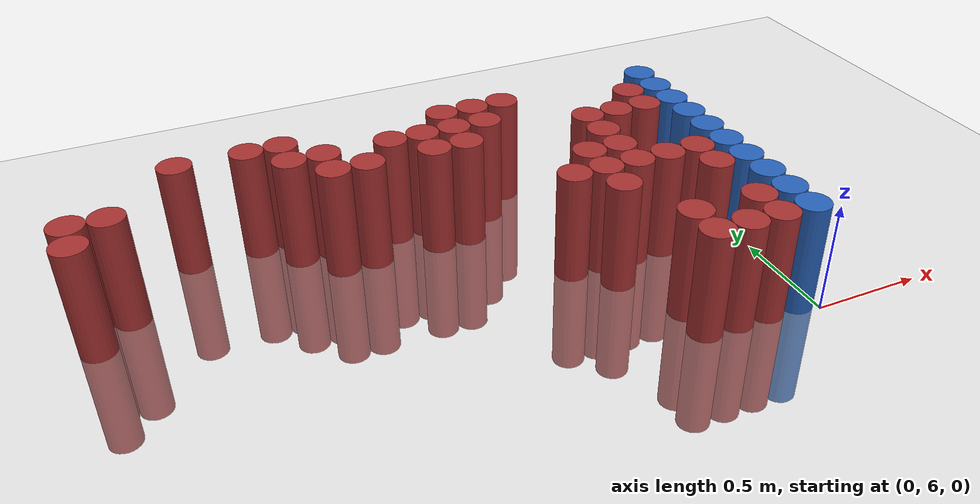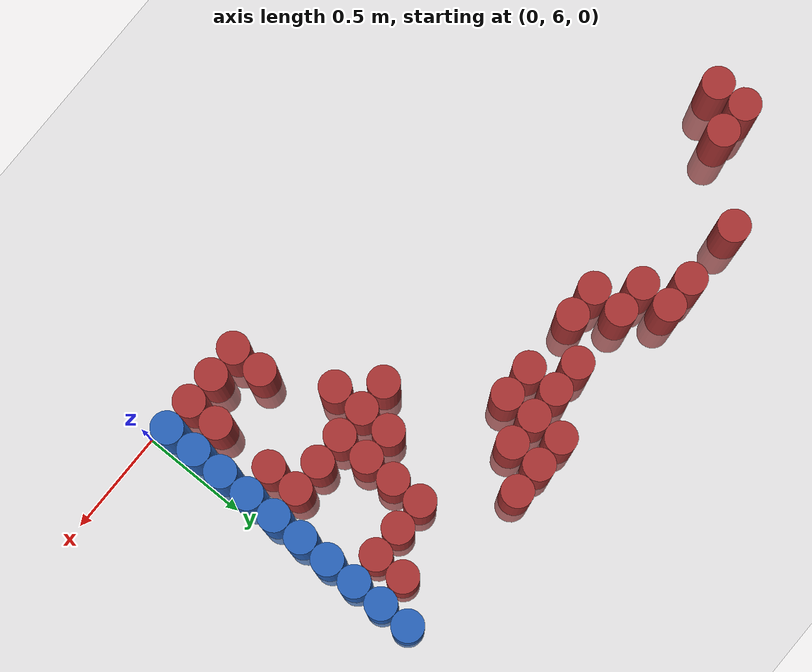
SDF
<sdf version="1.6">
 <world name="default">
  <model name="ground_plane">
   <static>1</static>
   <link name="link">
    <collision name="collision">
     <geometry><plane><normal>0 0 1</normal><size>100 100</size></plane></geometry>
     <surface><friction><ode><mu>100</mu><mu2>50</mu2></ode></friction></surface>
    </collision>
    <visual name="visual">
     <cast_shadows>0</cast_shadows>
     <geometry><plane><normal>0 0 1</normal><size>100 100</size></plane></geometry>
     <material>
      <script><uri>file://media/materials/scripts/gazebo.material</uri><name>Gazebo/Grey</name></script>
     </material>
    </visual>
   </link>
  </model>
  <model name="unit_cylinder_171">
   <static>1</static>
   <pose>-2.775000 6.975000 0.000000 0.000000 0.000000 0.000000</pose>
   <link name="link">
    <inertial>
     <mass>1</mass>
     <inertia><ixx>0.145833</ixx><ixy>0</ixy><ixz>0</ixz><iyy>0.145833</iyy><iyz>0</iyz><izz>0.125</izz></inertia>
    </inertial>
    <collision name="collision">
     <geometry><cylinder><radius>0.075000</radius><length>1</length></cylinder></geometry>
    </collision>
    <visual name="visual">
     <geometry><cylinder><radius>0.075000</radius><length>1</length></cylinder></geometry>
     <material>
      <ambient>0.648000 0.192000 0.192000 1</ambient>
      <diffuse>0.648000 0.192000 0.192000 1</diffuse>
     </material>
     <material>
      <script><name>Gazebo/Grey</name><uri>file://media/materials/scripts/gazebo.material</uri></script>
     </material>
    </visual>
   </link>
  </model>
  <model name="unit_cylinder_172">
   <static>1</static>
   <pose>-2.775000 7.125000 0.000000 0.000000 0.000000 0.000000</pose>
   <link name="link">
    <inertial>
     <mass>1</mass>
     <inertia><ixx>0.145833</ixx><ixy>0</ixy><ixz>0</ixz><iyy>0.145833</iyy><iyz>0</iyz><izz>0.125</izz></inertia>
    </inertial>
    <collision name="collision">
     <geometry><cylinder><radius>0.075000</radius><length>1</length></cylinder></geometry>
    </collision>
    <visual name="visual">
     <geometry><cylinder><radius>0.075000</radius><length>1</length></cylinder></geometry>
     <material>
      <ambient>0.648000 0.192000 0.192000 1</ambient>
      <diffuse>0.648000 0.192000 0.192000 1</diffuse>
     </material>
     <material>
      <script><name>Gazebo/Grey</name><uri>file://media/materials/scripts/gazebo.material</uri></script>
     </material>
    </visual>
   </link>
  </model>
  <model name="unit_cylinder_173">
   <static>1</static>
   <pose>-2.625000 7.125000 0.000000 0.000000 0.000000 0.000000</pose>
   <link name="link">
    <inertial>
     <mass>1</mass>
     <inertia><ixx>0.145833</ixx><ixy>0</ixy><ixz>0</ixz><iyy>0.145833</iyy><iyz>0</iyz><izz>0.125</izz></inertia>
    </inertial>
    <collision name="collision">
     <geometry><cylinder><radius>0.075000</radius><length>1</length></cylinder></geometry>
    </collision>
    <visual name="visual">
     <geometry><cylinder><radius>0.075000</radius><length>1</length></cylinder></geometry>
     <material>
      <ambient>0.648000 0.192000 0.192000 1</ambient>
      <diffuse>0.648000 0.192000 0.192000 1</diffuse>
     </material>
     <material>
      <script><name>Gazebo/Grey</name><uri>file://media/materials/scripts/gazebo.material</uri></script>
     </material>
    </visual>
   </link>
  </model>
  <model name="unit_cylinder_174">
   <static>1</static>
   <pose>-2.325000 7.425000 0.000000 0.000000 0.000000 0.000000</pose>
   <link name="link">
    <inertial>
     <mass>1</mass>
     <inertia><ixx>0.145833</ixx><ixy>0</ixy><ixz>0</ixz><iyy>0.145833</iyy><iyz>0</iyz><izz>0.125</izz></inertia>
    </inertial>
    <collision name="collision">
     <geometry><cylinder><radius>0.075000</radius><length>1</length></cylinder></geometry>
    </collision>
    <visual name="visual">
     <geometry><cylinder><radius>0.075000</radius><length>1</length></cylinder></geometry>
     <material>
      <ambient>0.648000 0.192000 0.192000 1</ambient>
      <diffuse>0.648000 0.192000 0.192000 1</diffuse>
     </material>
     <material>
      <script><name>Gazebo/Grey</name><uri>file://media/materials/scripts/gazebo.material</uri></script>
     </material>
    </visual>
   </link>
  </model>
  <model name="unit_cylinder_183">
   <static>1</static>
   <pose>-2.025000 7.425000 0.000000 0.000000 0.000000 0.000000</pose>
   <link name="link">
    <inertial>
     <mass>1</mass>
     <inertia><ixx>0.145833</ixx><ixy>0</ixy><ixz>0</ixz><iyy>0.145833</iyy><iyz>0</iyz><izz>0.125</izz></inertia>
    </inertial>
    <collision name="collision">
     <geometry><cylinder><radius>0.075000</radius><length>1</length></cylinder></geometry>
    </collision>
    <visual name="visual">
     <geometry><cylinder><radius>0.075000</radius><length>1</length></cylinder></geometry>
     <material>
      <ambient>0.648000 0.192000 0.192000 1</ambient>
      <diffuse>0.648000 0.192000 0.192000 1</diffuse>
     </material>
     <material>
      <script><name>Gazebo/Grey</name><uri>file://media/materials/scripts/gazebo.material</uri></script>
     </material>
    </visual>
   </link>
  </model>
  <model name="unit_cylinder_191">
   <static>1</static>
   <pose>-1.875000 7.275000 0.000000 0.000000 0.000000 0.000000</pose>
   <link name="link">
    <inertial>
     <mass>1</mass>
     <inertia><ixx>0.145833</ixx><ixy>0</ixy><ixz>0</ixz><iyy>0.145833</iyy><iyz>0</iyz><izz>0.125</izz></inertia>
    </inertial>
    <collision name="collision">
     <geometry><cylinder><radius>0.075000</radius><length>1</length></cylinder></geometry>
    </collision>
    <visual name="visual">
     <geometry><cylinder><radius>0.075000</radius><length>1</length></cylinder></geometry>
     <material>
      <ambient>0.648000 0.192000 0.192000 1</ambient>
      <diffuse>0.648000 0.192000 0.192000 1</diffuse>
     </material>
     <material>
      <script><name>Gazebo/Grey</name><uri>file://media/materials/scripts/gazebo.material</uri></script>
     </material>
    </visual>
   </link>
  </model>
  <model name="unit_cylinder_192">
   <static>1</static>
   <pose>-1.875000 7.425000 0.000000 0.000000 0.000000 0.000000</pose>
   <link name="link">
    <inertial>
     <mass>1</mass>
     <inertia><ixx>0.145833</ixx><ixy>0</ixy><ixz>0</ixz><iyy>0.145833</iyy><iyz>0</iyz><izz>0.125</izz></inertia>
    </inertial>
    <collision name="collision">
     <geometry><cylinder><radius>0.075000</radius><length>1</length></cylinder></geometry>
    </collision>
    <visual name="visual">
     <geometry><cylinder><radius>0.075000</radius><length>1</length></cylinder></geometry>
     <material>
      <ambient>0.648000 0.192000 0.192000 1</ambient>
      <diffuse>0.648000 0.192000 0.192000 1</diffuse>
     </material>
     <material>
      <script><name>Gazebo/Grey</name><uri>file://media/materials/scripts/gazebo.material</uri></script>
     </material>
    </visual>
   </link>
  </model>
  <model name="unit_cylinder_201">
   <static>1</static>
   <pose>-1.725000 7.125000 0.000000 0.000000 0.000000 0.000000</pose>
   <link name="link">
    <inertial>
     <mass>1</mass>
     <inertia><ixx>0.145833</ixx><ixy>0</ixy><ixz>0</ixz><iyy>0.145833</iyy><iyz>0</iyz><izz>0.125</izz></inertia>
    </inertial>
    <collision name="collision">
     <geometry><cylinder><radius>0.075000</radius><length>1</length></cylinder></geometry>
    </collision>
    <visual name="visual">
     <geometry><cylinder><radius>0.075000</radius><length>1</length></cylinder></geometry>
     <material>
      <ambient>0.648000 0.192000 0.192000 1</ambient>
      <diffuse>0.648000 0.192000 0.192000 1</diffuse>
     </material>
     <material>
      <script><name>Gazebo/Grey</name><uri>file://media/materials/scripts/gazebo.material</uri></script>
     </material>
    </visual>
   </link>
  </model>
  <model name="unit_cylinder_202">
   <static>1</static>
   <pose>-1.725000 7.275000 0.000000 0.000000 0.000000 0.000000</pose>
   <link name="link">
    <inertial>
     <mass>1</mass>
     <inertia><ixx>0.145833</ixx><ixy>0</ixy><ixz>0</ixz><iyy>0.145833</iyy><iyz>0</iyz><izz>0.125</izz></inertia>
    </inertial>
    <collision name="collision">
     <geometry><cylinder><radius>0.075000</radius><length>1</length></cylinder></geometry>
    </collision>
    <visual name="visual">
     <geometry><cylinder><radius>0.075000</radius><length>1</length></cylinder></geometry>
     <material>
      <ambient>0.648000 0.192000 0.192000 1</ambient>
      <diffuse>0.648000 0.192000 0.192000 1</diffuse>
     </material>
     <material>
      <script><name>Gazebo/Grey</name><uri>file://media/materials/scripts/gazebo.material</uri></script>
     </material>
    </visual>
   </link>
  </model>
  <model name="unit_cylinder_211">
   <static>1</static>
   <pose>-1.575000 7.125000 0.000000 0.000000 0.000000 0.000000</pose>
   <link name="link">
    <inertial>
     <mass>1</mass>
     <inertia><ixx>0.145833</ixx><ixy>0</ixy><ixz>0</ixz><iyy>0.145833</iyy><iyz>0</iyz><izz>0.125</izz></inertia>
    </inertial>
    <collision name="collision">
     <geometry><cylinder><radius>0.075000</radius><length>1</length></cylinder></geometry>
    </collision>
    <visual name="visual">
     <geometry><cylinder><radius>0.075000</radius><length>1</length></cylinder></geometry>
     <material>
      <ambient>0.648000 0.192000 0.192000 1</ambient>
      <diffuse>0.648000 0.192000 0.192000 1</diffuse>
     </material>
     <material>
      <script><name>Gazebo/Grey</name><uri>file://media/materials/scripts/gazebo.material</uri></script>
     </material>
    </visual>
   </link>
  </model>
  <model name="unit_cylinder_216">
   <static>1</static>
   <pose>-1.425000 7.275000 0.000000 0.000000 0.000000 0.000000</pose>
   <link name="link">
    <inertial>
     <mass>1</mass>
     <inertia><ixx>0.145833</ixx><ixy>0</ixy><ixz>0</ixz><iyy>0.145833</iyy><iyz>0</iyz><izz>0.125</izz></inertia>
    </inertial>
    <collision name="collision">
     <geometry><cylinder><radius>0.075000</radius><length>1</length></cylinder></geometry>
    </collision>
    <visual name="visual">
     <geometry><cylinder><radius>0.075000</radius><length>1</length></cylinder></geometry>
     <material>
      <ambient>0.648000 0.192000 0.192000 1</ambient>
      <diffuse>0.648000 0.192000 0.192000 1</diffuse>
     </material>
     <material>
      <script><name>Gazebo/Grey</name><uri>file://media/materials/scripts/gazebo.material</uri></script>
     </material>
    </visual>
   </link>
  </model>
  <model name="unit_cylinder_217">
   <static>1</static>
   <pose>-1.275000 7.125000 0.000000 0.000000 0.000000 0.000000</pose>
   <link name="link">
    <inertial>
     <mass>1</mass>
     <inertia><ixx>0.145833</ixx><ixy>0</ixy><ixz>0</ixz><iyy>0.145833</iyy><iyz>0</iyz><izz>0.125</izz></inertia>
    </inertial>
    <collision name="collision">
     <geometry><cylinder><radius>0.075000</radius><length>1</length></cylinder></geometry>
    </collision>
    <visual name="visual">
     <geometry><cylinder><radius>0.075000</radius><length>1</length></cylinder></geometry>
     <material>
      <ambient>0.648000 0.192000 0.192000 1</ambient>
      <diffuse>0.648000 0.192000 0.192000 1</diffuse>
     </material>
     <material>
      <script><name>Gazebo/Grey</name><uri>file://media/materials/scripts/gazebo.material</uri></script>
     </material>
    </visual>
   </link>
  </model>
  <model name="unit_cylinder_218">
   <static>1</static>
   <pose>-1.275000 7.275000 0.000000 0.000000 0.000000 0.000000</pose>
   <link name="link">
    <inertial>
     <mass>1</mass>
     <inertia><ixx>0.145833</ixx><ixy>0</ixy><ixz>0</ixz><iyy>0.145833</iyy><iyz>0</iyz><izz>0.125</izz></inertia>
    </inertial>
    <collision name="collision">
     <geometry><cylinder><radius>0.075000</radius><length>1</length></cylinder></geometry>
    </collision>
    <visual name="visual">
     <geometry><cylinder><radius>0.075000</radius><length>1</length></cylinder></geometry>
     <material>
      <ambient>0.648000 0.192000 0.192000 1</ambient>
      <diffuse>0.648000 0.192000 0.192000 1</diffuse>
     </material>
     <material>
      <script><name>Gazebo/Grey</name><uri>file://media/materials/scripts/gazebo.material</uri></script>
     </material>
    </visual>
   </link>
  </model>
  <model name="unit_cylinder_220">
   <static>1</static>
   <pose>-1.125000 7.125000 0.000000 0.000000 0.000000 0.000000</pose>
   <link name="link">
    <inertial>
     <mass>1</mass>
     <inertia><ixx>0.145833</ixx><ixy>0</ixy><ixz>0</ixz><iyy>0.145833</iyy><iyz>0</iyz><izz>0.125</izz></inertia>
    </inertial>
    <collision name="collision">
     <geometry><cylinder><radius>0.075000</radius><length>1</length></cylinder></geometry>
    </collision>
    <visual name="visual">
     <geometry><cylinder><radius>0.075000</radius><length>1</length></cylinder></geometry>
     <material>
      <ambient>0.648000 0.192000 0.192000 1</ambient>
      <diffuse>0.648000 0.192000 0.192000 1</diffuse>
     </material>
     <material>
      <script><name>Gazebo/Grey</name><uri>file://media/materials/scripts/gazebo.material</uri></script>
     </material>
    </visual>
   </link>
  </model>
  <model name="unit_cylinder_221">
   <static>1</static>
   <pose>-1.125000 7.275000 0.000000 0.000000 0.000000 0.000000</pose>
   <link name="link">
    <inertial>
     <mass>1</mass>
     <inertia><ixx>0.145833</ixx><ixy>0</ixy><ixz>0</ixz><iyy>0.145833</iyy><iyz>0</iyz><izz>0.125</izz></inertia>
    </inertial>
    <collision name="collision">
     <geometry><cylinder><radius>0.075000</radius><length>1</length></cylinder></geometry>
    </collision>
    <visual name="visual">
     <geometry><cylinder><radius>0.075000</radius><length>1</length></cylinder></geometry>
     <material>
      <ambient>0.648000 0.192000 0.192000 1</ambient>
      <diffuse>0.648000 0.192000 0.192000 1</diffuse>
     </material>
     <material>
      <script><name>Gazebo/Grey</name><uri>file://media/materials/scripts/gazebo.material</uri></script>
     </material>
    </visual>
   </link>
  </model>
  <model name="unit_cylinder_222">
   <static>1</static>
   <pose>-1.125000 7.425000 0.000000 0.000000 0.000000 0.000000</pose>
   <link name="link">
    <inertial>
     <mass>1</mass>
     <inertia><ixx>0.145833</ixx><ixy>0</ixy><ixz>0</ixz><iyy>0.145833</iyy><iyz>0</iyz><izz>0.125</izz></inertia>
    </inertial>
    <collision name="collision">
     <geometry><cylinder><radius>0.075000</radius><length>1</length></cylinder></geometry>
    </collision>
    <visual name="visual">
     <geometry><cylinder><radius>0.075000</radius><length>1</length></cylinder></geometry>
     <material>
      <ambient>0.648000 0.192000 0.192000 1</ambient>
      <diffuse>0.648000 0.192000 0.192000 1</diffuse>
     </material>
     <material>
      <script><name>Gazebo/Grey</name><uri>file://media/materials/scripts/gazebo.material</uri></script>
     </material>
    </visual>
   </link>
  </model>
  <model name="unit_cylinder_225">
   <static>1</static>
   <pose>-0.975000 7.275000 0.000000 0.000000 0.000000 0.000000</pose>
   <link name="link">
    <inertial>
     <mass>1</mass>
     <inertia><ixx>0.145833</ixx><ixy>0</ixy><ixz>0</ixz><iyy>0.145833</iyy><iyz>0</iyz><izz>0.125</izz></inertia>
    </inertial>
    <collision name="collision">
     <geometry><cylinder><radius>0.075000</radius><length>1</length></cylinder></geometry>
    </collision>
    <visual name="visual">
     <geometry><cylinder><radius>0.075000</radius><length>1</length></cylinder></geometry>
     <material>
      <ambient>0.648000 0.192000 0.192000 1</ambient>
      <diffuse>0.648000 0.192000 0.192000 1</diffuse>
     </material>
     <material>
      <script><name>Gazebo/Grey</name><uri>file://media/materials/scripts/gazebo.material</uri></script>
     </material>
    </visual>
   </link>
  </model>
  <model name="unit_cylinder_226">
   <static>1</static>
   <pose>-0.975000 7.425000 0.000000 0.000000 0.000000 0.000000</pose>
   <link name="link">
    <inertial>
     <mass>1</mass>
     <inertia><ixx>0.145833</ixx><ixy>0</ixy><ixz>0</ixz><iyy>0.145833</iyy><iyz>0</iyz><izz>0.125</izz></inertia>
    </inertial>
    <collision name="collision">
     <geometry><cylinder><radius>0.075000</radius><length>1</length></cylinder></geometry>
    </collision>
    <visual name="visual">
     <geometry><cylinder><radius>0.075000</radius><length>1</length></cylinder></geometry>
     <material>
      <ambient>0.648000 0.192000 0.192000 1</ambient>
      <diffuse>0.648000 0.192000 0.192000 1</diffuse>
     </material>
     <material>
      <script><name>Gazebo/Grey</name><uri>file://media/materials/scripts/gazebo.material</uri></script>
     </material>
    </visual>
   </link>
  </model>
  <model name="unit_cylinder_228">
   <static>1</static>
   <pose>-0.825000 6.675000 0.000000 0.000000 0.000000 0.000000</pose>
   <link name="link">
    <inertial>
     <mass>1</mass>
     <inertia><ixx>0.145833</ixx><ixy>0</ixy><ixz>0</ixz><iyy>0.145833</iyy><iyz>0</iyz><izz>0.125</izz></inertia>
    </inertial>
    <collision name="collision">
     <geometry><cylinder><radius>0.075000</radius><length>1</length></cylinder></geometry>
    </collision>
    <visual name="visual">
     <geometry><cylinder><radius>0.075000</radius><length>1</length></cylinder></geometry>
     <material>
      <ambient>0.648000 0.192000 0.192000 1</ambient>
      <diffuse>0.648000 0.192000 0.192000 1</diffuse>
     </material>
     <material>
      <script><name>Gazebo/Grey</name><uri>file://media/materials/scripts/gazebo.material</uri></script>
     </material>
    </visual>
   </link>
  </model>
  <model name="unit_cylinder_229">
   <static>1</static>
   <pose>-0.825000 7.425000 0.000000 0.000000 0.000000 0.000000</pose>
   <link name="link">
    <inertial>
     <mass>1</mass>
     <inertia><ixx>0.145833</ixx><ixy>0</ixy><ixz>0</ixz><iyy>0.145833</iyy><iyz>0</iyz><izz>0.125</izz></inertia>
    </inertial>
    <collision name="collision">
     <geometry><cylinder><radius>0.075000</radius><length>1</length></cylinder></geometry>
    </collision>
    <visual name="visual">
     <geometry><cylinder><radius>0.075000</radius><length>1</length></cylinder></geometry>
     <material>
      <ambient>0.648000 0.192000 0.192000 1</ambient>
      <diffuse>0.648000 0.192000 0.192000 1</diffuse>
     </material>
     <material>
      <script><name>Gazebo/Grey</name><uri>file://media/materials/scripts/gazebo.material</uri></script>
     </material>
    </visual>
   </link>
  </model>
  <model name="unit_cylinder_230">
   <static>1</static>
   <pose>-0.675000 6.525000 0.000000 0.000000 0.000000 0.000000</pose>
   <link name="link">
    <inertial>
     <mass>1</mass>
     <inertia><ixx>0.145833</ixx><ixy>0</ixy><ixz>0</ixz><iyy>0.145833</iyy><iyz>0</iyz><izz>0.125</izz></inertia>
    </inertial>
    <collision name="collision">
     <geometry><cylinder><radius>0.075000</radius><length>1</length></cylinder></geometry>
    </collision>
    <visual name="visual">
     <geometry><cylinder><radius>0.075000</radius><length>1</length></cylinder></geometry>
     <material>
      <ambient>0.648000 0.192000 0.192000 1</ambient>
      <diffuse>0.648000 0.192000 0.192000 1</diffuse>
     </material>
     <material>
      <script><name>Gazebo/Grey</name><uri>file://media/materials/scripts/gazebo.material</uri></script>
     </material>
    </visual>
   </link>
  </model>
  <model name="unit_cylinder_231">
   <static>1</static>
   <pose>-0.675000 6.675000 0.000000 0.000000 0.000000 0.000000</pose>
   <link name="link">
    <inertial>
     <mass>1</mass>
     <inertia><ixx>0.145833</ixx><ixy>0</ixy><ixz>0</ixz><iyy>0.145833</iyy><iyz>0</iyz><izz>0.125</izz></inertia>
    </inertial>
    <collision name="collision">
     <geometry><cylinder><radius>0.075000</radius><length>1</length></cylinder></geometry>
    </collision>
    <visual name="visual">
     <geometry><cylinder><radius>0.075000</radius><length>1</length></cylinder></geometry>
     <material>
      <ambient>0.648000 0.192000 0.192000 1</ambient>
      <diffuse>0.648000 0.192000 0.192000 1</diffuse>
     </material>
     <material>
      <script><name>Gazebo/Grey</name><uri>file://media/materials/scripts/gazebo.material</uri></script>
     </material>
    </visual>
   </link>
  </model>
  <model name="unit_cylinder_232">
   <static>1</static>
   <pose>-0.675000 6.825000 0.000000 0.000000 0.000000 0.000000</pose>
   <link name="link">
    <inertial>
     <mass>1</mass>
     <inertia><ixx>0.145833</ixx><ixy>0</ixy><ixz>0</ixz><iyy>0.145833</iyy><iyz>0</iyz><izz>0.125</izz></inertia>
    </inertial>
    <collision name="collision">
     <geometry><cylinder><radius>0.075000</radius><length>1</length></cylinder></geometry>
    </collision>
    <visual name="visual">
     <geometry><cylinder><radius>0.075000</radius><length>1</length></cylinder></geometry>
     <material>
      <ambient>0.648000 0.192000 0.192000 1</ambient>
      <diffuse>0.648000 0.192000 0.192000 1</diffuse>
     </material>
     <material>
      <script><name>Gazebo/Grey</name><uri>file://media/materials/scripts/gazebo.material</uri></script>
     </material>
    </visual>
   </link>
  </model>
  <model name="unit_cylinder_234">
   <static>1</static>
   <pose>-0.525000 6.075000 0.000000 0.000000 0.000000 0.000000</pose>
   <link name="link">
    <inertial>
     <mass>1</mass>
     <inertia><ixx>0.145833</ixx><ixy>0</ixy><ixz>0</ixz><iyy>0.145833</iyy><iyz>0</iyz><izz>0.125</izz></inertia>
    </inertial>
    <collision name="collision">
     <geometry><cylinder><radius>0.075000</radius><length>1</length></cylinder></geometry>
    </collision>
    <visual name="visual">
     <geometry><cylinder><radius>0.075000</radius><length>1</length></cylinder></geometry>
     <material>
      <ambient>0.648000 0.192000 0.192000 1</ambient>
      <diffuse>0.648000 0.192000 0.192000 1</diffuse>
     </material>
     <material>
      <script><name>Gazebo/Grey</name><uri>file://media/materials/scripts/gazebo.material</uri></script>
     </material>
    </visual>
   </link>
  </model>
  <model name="unit_cylinder_235">
   <static>1</static>
   <pose>-0.525000 6.225000 0.000000 0.000000 0.000000 0.000000</pose>
   <link name="link">
    <inertial>
     <mass>1</mass>
     <inertia><ixx>0.145833</ixx><ixy>0</ixy><ixz>0</ixz><iyy>0.145833</iyy><iyz>0</iyz><izz>0.125</izz></inertia>
    </inertial>
    <collision name="collision">
     <geometry><cylinder><radius>0.075000</radius><length>1</length></cylinder></geometry>
    </collision>
    <visual name="visual">
     <geometry><cylinder><radius>0.075000</radius><length>1</length></cylinder></geometry>
     <material>
      <ambient>0.648000 0.192000 0.192000 1</ambient>
      <diffuse>0.648000 0.192000 0.192000 1</diffuse>
     </material>
     <material>
      <script><name>Gazebo/Grey</name><uri>file://media/materials/scripts/gazebo.material</uri></script>
     </material>
    </visual>
   </link>
  </model>
  <model name="unit_cylinder_236">
   <static>1</static>
   <pose>-0.525000 6.675000 0.000000 0.000000 0.000000 0.000000</pose>
   <link name="link">
    <inertial>
     <mass>1</mass>
     <inertia><ixx>0.145833</ixx><ixy>0</ixy><ixz>0</ixz><iyy>0.145833</iyy><iyz>0</iyz><izz>0.125</izz></inertia>
    </inertial>
    <collision name="collision">
     <geometry><cylinder><radius>0.075000</radius><length>1</length></cylinder></geometry>
    </collision>
    <visual name="visual">
     <geometry><cylinder><radius>0.075000</radius><length>1</length></cylinder></geometry>
     <material>
      <ambient>0.648000 0.192000 0.192000 1</ambient>
      <diffuse>0.648000 0.192000 0.192000 1</diffuse>
     </material>
     <material>
      <script><name>Gazebo/Grey</name><uri>file://media/materials/scripts/gazebo.material</uri></script>
     </material>
    </visual>
   </link>
  </model>
  <model name="unit_cylinder_237">
   <static>1</static>
   <pose>-0.525000 6.825000 0.000000 0.000000 0.000000 0.000000</pose>
   <link name="link">
    <inertial>
     <mass>1</mass>
     <inertia><ixx>0.145833</ixx><ixy>0</ixy><ixz>0</ixz><iyy>0.145833</iyy><iyz>0</iyz><izz>0.125</izz></inertia>
    </inertial>
    <collision name="collision">
     <geometry><cylinder><radius>0.075000</radius><length>1</length></cylinder></geometry>
    </collision>
    <visual name="visual">
     <geometry><cylinder><radius>0.075000</radius><length>1</length></cylinder></geometry>
     <material>
      <ambient>0.648000 0.192000 0.192000 1</ambient>
      <diffuse>0.648000 0.192000 0.192000 1</diffuse>
     </material>
     <material>
      <script><name>Gazebo/Grey</name><uri>file://media/materials/scripts/gazebo.material</uri></script>
     </material>
    </visual>
   </link>
  </model>
  <model name="unit_cylinder_238">
   <static>1</static>
   <pose>-0.525000 6.975000 0.000000 0.000000 0.000000 0.000000</pose>
   <link name="link">
    <inertial>
     <mass>1</mass>
     <inertia><ixx>0.145833</ixx><ixy>0</ixy><ixz>0</ixz><iyy>0.145833</iyy><iyz>0</iyz><izz>0.125</izz></inertia>
    </inertial>
    <collision name="collision">
     <geometry><cylinder><radius>0.075000</radius><length>1</length></cylinder></geometry>
    </collision>
    <visual name="visual">
     <geometry><cylinder><radius>0.075000</radius><length>1</length></cylinder></geometry>
     <material>
      <ambient>0.648000 0.192000 0.192000 1</ambient>
      <diffuse>0.648000 0.192000 0.192000 1</diffuse>
     </material>
     <material>
      <script><name>Gazebo/Grey</name><uri>file://media/materials/scripts/gazebo.material</uri></script>
     </material>
    </visual>
   </link>
  </model>
  <model name="unit_cylinder_239">
   <static>1</static>
   <pose>-0.525000 7.125000 0.000000 0.000000 0.000000 0.000000</pose>
   <link name="link">
    <inertial>
     <mass>1</mass>
     <inertia><ixx>0.145833</ixx><ixy>0</ixy><ixz>0</ixz><iyy>0.145833</iyy><iyz>0</iyz><izz>0.125</izz></inertia>
    </inertial>
    <collision name="collision">
     <geometry><cylinder><radius>0.075000</radius><length>1</length></cylinder></geometry>
    </collision>
    <visual name="visual">
     <geometry><cylinder><radius>0.075000</radius><length>1</length></cylinder></geometry>
     <material>
      <ambient>0.648000 0.192000 0.192000 1</ambient>
      <diffuse>0.648000 0.192000 0.192000 1</diffuse>
     </material>
     <material>
      <script><name>Gazebo/Grey</name><uri>file://media/materials/scripts/gazebo.material</uri></script>
     </material>
    </visual>
   </link>
  </model>
  <model name="unit_cylinder_243">
   <static>1</static>
   <pose>-0.375000 6.075000 0.000000 0.000000 0.000000 0.000000</pose>
   <link name="link">
    <inertial>
     <mass>1</mass>
     <inertia><ixx>0.145833</ixx><ixy>0</ixy><ixz>0</ixz><iyy>0.145833</iyy><iyz>0</iyz><izz>0.125</izz></inertia>
    </inertial>
    <collision name="collision">
     <geometry><cylinder><radius>0.075000</radius><length>1</length></cylinder></geometry>
    </collision>
    <visual name="visual">
     <geometry><cylinder><radius>0.075000</radius><length>1</length></cylinder></geometry>
     <material>
      <ambient>0.648000 0.192000 0.192000 1</ambient>
      <diffuse>0.648000 0.192000 0.192000 1</diffuse>
     </material>
     <material>
      <script><name>Gazebo/Grey</name><uri>file://media/materials/scripts/gazebo.material</uri></script>
     </material>
    </visual>
   </link>
  </model>
  <model name="unit_cylinder_244">
   <static>1</static>
   <pose>-0.375000 6.675000 0.000000 0.000000 0.000000 0.000000</pose>
   <link name="link">
    <inertial>
     <mass>1</mass>
     <inertia><ixx>0.145833</ixx><ixy>0</ixy><ixz>0</ixz><iyy>0.145833</iyy><iyz>0</iyz><izz>0.125</izz></inertia>
    </inertial>
    <collision name="collision">
     <geometry><cylinder><radius>0.075000</radius><length>1</length></cylinder></geometry>
    </collision>
    <visual name="visual">
     <geometry><cylinder><radius>0.075000</radius><length>1</length></cylinder></geometry>
     <material>
      <ambient>0.648000 0.192000 0.192000 1</ambient>
      <diffuse>0.648000 0.192000 0.192000 1</diffuse>
     </material>
     <material>
      <script><name>Gazebo/Grey</name><uri>file://media/materials/scripts/gazebo.material</uri></script>
     </material>
    </visual>
   </link>
  </model>
  <model name="unit_cylinder_245">
   <static>1</static>
   <pose>-0.375000 7.125000 0.000000 0.000000 0.000000 0.000000</pose>
   <link name="link">
    <inertial>
     <mass>1</mass>
     <inertia><ixx>0.145833</ixx><ixy>0</ixy><ixz>0</ixz><iyy>0.145833</iyy><iyz>0</iyz><izz>0.125</izz></inertia>
    </inertial>
    <collision name="collision">
     <geometry><cylinder><radius>0.075000</radius><length>1</length></cylinder></geometry>
    </collision>
    <visual name="visual">
     <geometry><cylinder><radius>0.075000</radius><length>1</length></cylinder></geometry>
     <material>
      <ambient>0.648000 0.192000 0.192000 1</ambient>
      <diffuse>0.648000 0.192000 0.192000 1</diffuse>
     </material>
     <material>
      <script><name>Gazebo/Grey</name><uri>file://media/materials/scripts/gazebo.material</uri></script>
     </material>
    </visual>
   </link>
  </model>
  <model name="unit_cylinder_251">
   <static>1</static>
   <pose>-0.225000 6.075000 0.000000 0.000000 0.000000 0.000000</pose>
   <link name="link">
    <inertial>
     <mass>1</mass>
     <inertia><ixx>0.145833</ixx><ixy>0</ixy><ixz>0</ixz><iyy>0.145833</iyy><iyz>0</iyz><izz>0.125</izz></inertia>
    </inertial>
    <collision name="collision">
     <geometry><cylinder><radius>0.075000</radius><length>1</length></cylinder></geometry>
    </collision>
    <visual name="visual">
     <geometry><cylinder><radius>0.075000</radius><length>1</length></cylinder></geometry>
     <material>
      <ambient>0.648000 0.192000 0.192000 1</ambient>
      <diffuse>0.648000 0.192000 0.192000 1</diffuse>
     </material>
     <material>
      <script><name>Gazebo/Grey</name><uri>file://media/materials/scripts/gazebo.material</uri></script>
     </material>
    </visual>
   </link>
  </model>
  <model name="unit_cylinder_252">
   <static>1</static>
   <pose>-0.225000 6.225000 0.000000 0.000000 0.000000 0.000000</pose>
   <link name="link">
    <inertial>
     <mass>1</mass>
     <inertia><ixx>0.145833</ixx><ixy>0</ixy><ixz>0</ixz><iyy>0.145833</iyy><iyz>0</iyz><izz>0.125</izz></inertia>
    </inertial>
    <collision name="collision">
     <geometry><cylinder><radius>0.075000</radius><length>1</length></cylinder></geometry>
    </collision>
    <visual name="visual">
     <geometry><cylinder><radius>0.075000</radius><length>1</length></cylinder></geometry>
     <material>
      <ambient>0.648000 0.192000 0.192000 1</ambient>
      <diffuse>0.648000 0.192000 0.192000 1</diffuse>
     </material>
     <material>
      <script><name>Gazebo/Grey</name><uri>file://media/materials/scripts/gazebo.material</uri></script>
     </material>
    </visual>
   </link>
  </model>
  <model name="unit_cylinder_253">
   <static>1</static>
   <pose>-0.225000 6.525000 0.000000 0.000000 0.000000 0.000000</pose>
   <link name="link">
    <inertial>
     <mass>1</mass>
     <inertia><ixx>0.145833</ixx><ixy>0</ixy><ixz>0</ixz><iyy>0.145833</iyy><iyz>0</iyz><izz>0.125</izz></inertia>
    </inertial>
    <collision name="collision">
     <geometry><cylinder><radius>0.075000</radius><length>1</length></cylinder></geometry>
    </collision>
    <visual name="visual">
     <geometry><cylinder><radius>0.075000</radius><length>1</length></cylinder></geometry>
     <material>
      <ambient>0.648000 0.192000 0.192000 1</ambient>
      <diffuse>0.648000 0.192000 0.192000 1</diffuse>
     </material>
     <material>
      <script><name>Gazebo/Grey</name><uri>file://media/materials/scripts/gazebo.material</uri></script>
     </material>
    </visual>
   </link>
  </model>
  <model name="unit_cylinder_254">
   <static>1</static>
   <pose>-0.225000 6.675000 0.000000 0.000000 0.000000 0.000000</pose>
   <link name="link">
    <inertial>
     <mass>1</mass>
     <inertia><ixx>0.145833</ixx><ixy>0</ixy><ixz>0</ixz><iyy>0.145833</iyy><iyz>0</iyz><izz>0.125</izz></inertia>
    </inertial>
    <collision name="collision">
     <geometry><cylinder><radius>0.075000</radius><length>1</length></cylinder></geometry>
    </collision>
    <visual name="visual">
     <geometry><cylinder><radius>0.075000</radius><length>1</length></cylinder></geometry>
     <material>
      <ambient>0.648000 0.192000 0.192000 1</ambient>
      <diffuse>0.648000 0.192000 0.192000 1</diffuse>
     </material>
     <material>
      <script><name>Gazebo/Grey</name><uri>file://media/materials/scripts/gazebo.material</uri></script>
     </material>
    </visual>
   </link>
  </model>
  <model name="unit_cylinder_255">
   <static>1</static>
   <pose>-0.225000 7.125000 0.000000 0.000000 0.000000 0.000000</pose>
   <link name="link">
    <inertial>
     <mass>1</mass>
     <inertia><ixx>0.145833</ixx><ixy>0</ixy><ixz>0</ixz><iyy>0.145833</iyy><iyz>0</iyz><izz>0.125</izz></inertia>
    </inertial>
    <collision name="collision">
     <geometry><cylinder><radius>0.075000</radius><length>1</length></cylinder></geometry>
    </collision>
    <visual name="visual">
     <geometry><cylinder><radius>0.075000</radius><length>1</length></cylinder></geometry>
     <material>
      <ambient>0.648000 0.192000 0.192000 1</ambient>
      <diffuse>0.648000 0.192000 0.192000 1</diffuse>
     </material>
     <material>
      <script><name>Gazebo/Grey</name><uri>file://media/materials/scripts/gazebo.material</uri></script>
     </material>
    </visual>
   </link>
  </model>
  <model name="unit_cylinder_256">
   <static>1</static>
   <pose>-0.225000 7.275000 0.000000 0.000000 0.000000 0.000000</pose>
   <link name="link">
    <inertial>
     <mass>1</mass>
     <inertia><ixx>0.145833</ixx><ixy>0</ixy><ixz>0</ixz><iyy>0.145833</iyy><iyz>0</iyz><izz>0.125</izz></inertia>
    </inertial>
    <collision name="collision">
     <geometry><cylinder><radius>0.075000</radius><length>1</length></cylinder></geometry>
    </collision>
    <visual name="visual">
     <geometry><cylinder><radius>0.075000</radius><length>1</length></cylinder></geometry>
     <material>
      <ambient>0.648000 0.192000 0.192000 1</ambient>
      <diffuse>0.648000 0.192000 0.192000 1</diffuse>
     </material>
     <material>
      <script><name>Gazebo/Grey</name><uri>file://media/materials/scripts/gazebo.material</uri></script>
     </material>
    </visual>
   </link>
  </model>
  <model name="unit_cylinder_265">
   <static>1</static>
   <pose>-0.075000 6.075000 0.000000 0.000000 0.000000 0.000000</pose>
   <link name="link">
    <inertial>
     <mass>1</mass>
     <inertia><ixx>0.145833</ixx><ixy>0</ixy><ixz>0</ixz><iyy>0.145833</iyy><iyz>0</iyz><izz>0.125</izz></inertia>
    </inertial>
    <collision name="collision">
     <geometry><cylinder><radius>0.075000</radius><length>1</length></cylinder></geometry>
    </collision>
    <visual name="visual">
     <geometry><cylinder><radius>0.075000</radius><length>1</length></cylinder></geometry>
     <material>
      <ambient>0.152000 0.379000 0.720000 1</ambient>
      <diffuse>0.152000 0.379000 0.720000 1</diffuse>
     </material>
     <material>
      <script><name>Gazebo/Grey</name><uri>file://media/materials/scripts/gazebo.material</uri></script>
     </material>
    </visual>
   </link>
  </model>
  <model name="unit_cylinder_266">
   <static>1</static>
   <pose>-0.075000 6.225000 0.000000 0.000000 0.000000 0.000000</pose>
   <link name="link">
    <inertial>
     <mass>1</mass>
     <inertia><ixx>0.145833</ixx><ixy>0</ixy><ixz>0</ixz><iyy>0.145833</iyy><iyz>0</iyz><izz>0.125</izz></inertia>
    </inertial>
    <collision name="collision">
     <geometry><cylinder><radius>0.075000</radius><length>1</length></cylinder></geometry>
    </collision>
    <visual name="visual">
     <geometry><cylinder><radius>0.075000</radius><length>1</length></cylinder></geometry>
     <material>
      <ambient>0.152000 0.379000 0.720000 1</ambient>
      <diffuse>0.152000 0.379000 0.720000 1</diffuse>
     </material>
     <material>
      <script><name>Gazebo/Grey</name><uri>file://media/materials/scripts/gazebo.material</uri></script>
     </material>
    </visual>
   </link>
  </model>
  <model name="unit_cylinder_267">
   <static>1</static>
   <pose>-0.075000 6.375000 0.000000 0.000000 0.000000 0.000000</pose>
   <link name="link">
    <inertial>
     <mass>1</mass>
     <inertia><ixx>0.145833</ixx><ixy>0</ixy><ixz>0</ixz><iyy>0.145833</iyy><iyz>0</iyz><izz>0.125</izz></inertia>
    </inertial>
    <collision name="collision">
     <geometry><cylinder><radius>0.075000</radius><length>1</length></cylinder></geometry>
    </collision>
    <visual name="visual">
     <geometry><cylinder><radius>0.075000</radius><length>1</length></cylinder></geometry>
     <material>
      <ambient>0.152000 0.379000 0.720000 1</ambient>
      <diffuse>0.152000 0.379000 0.720000 1</diffuse>
     </material>
     <material>
      <script><name>Gazebo/Grey</name><uri>file://media/materials/scripts/gazebo.material</uri></script>
     </material>
    </visual>
   </link>
  </model>
  <model name="unit_cylinder_268">
   <static>1</static>
   <pose>-0.075000 6.525000 0.000000 0.000000 0.000000 0.000000</pose>
   <link name="link">
    <inertial>
     <mass>1</mass>
     <inertia><ixx>0.145833</ixx><ixy>0</ixy><ixz>0</ixz><iyy>0.145833</iyy><iyz>0</iyz><izz>0.125</izz></inertia>
    </inertial>
    <collision name="collision">
     <geometry><cylinder><radius>0.075000</radius><length>1</length></cylinder></geometry>
    </collision>
    <visual name="visual">
     <geometry><cylinder><radius>0.075000</radius><length>1</length></cylinder></geometry>
     <material>
      <ambient>0.152000 0.379000 0.720000 1</ambient>
      <diffuse>0.152000 0.379000 0.720000 1</diffuse>
     </material>
     <material>
      <script><name>Gazebo/Grey</name><uri>file://media/materials/scripts/gazebo.material</uri></script>
     </material>
    </visual>
   </link>
  </model>
  <model name="unit_cylinder_269">
   <static>1</static>
   <pose>-0.075000 6.675000 0.000000 0.000000 0.000000 0.000000</pose>
   <link name="link">
    <inertial>
     <mass>1</mass>
     <inertia><ixx>0.145833</ixx><ixy>0</ixy><ixz>0</ixz><iyy>0.145833</iyy><iyz>0</iyz><izz>0.125</izz></inertia>
    </inertial>
    <collision name="collision">
     <geometry><cylinder><radius>0.075000</radius><length>1</length></cylinder></geometry>
    </collision>
    <visual name="visual">
     <geometry><cylinder><radius>0.075000</radius><length>1</length></cylinder></geometry>
     <material>
      <ambient>0.152000 0.379000 0.720000 1</ambient>
      <diffuse>0.152000 0.379000 0.720000 1</diffuse>
     </material>
     <material>
      <script><name>Gazebo/Grey</name><uri>file://media/materials/scripts/gazebo.material</uri></script>
     </material>
    </visual>
   </link>
  </model>
  <model name="unit_cylinder_270">
   <static>1</static>
   <pose>-0.075000 6.825000 0.000000 0.000000 0.000000 0.000000</pose>
   <link name="link">
    <inertial>
     <mass>1</mass>
     <inertia><ixx>0.145833</ixx><ixy>0</ixy><ixz>0</ixz><iyy>0.145833</iyy><iyz>0</iyz><izz>0.125</izz></inertia>
    </inertial>
    <collision name="collision">
     <geometry><cylinder><radius>0.075000</radius><length>1</length></cylinder></geometry>
    </collision>
    <visual name="visual">
     <geometry><cylinder><radius>0.075000</radius><length>1</length></cylinder></geometry>
     <material>
      <ambient>0.152000 0.379000 0.720000 1</ambient>
      <diffuse>0.152000 0.379000 0.720000 1</diffuse>
     </material>
     <material>
      <script><name>Gazebo/Grey</name><uri>file://media/materials/scripts/gazebo.material</uri></script>
     </material>
    </visual>
   </link>
  </model>
  <model name="unit_cylinder_271">
   <static>1</static>
   <pose>-0.075000 6.975000 0.000000 0.000000 0.000000 0.000000</pose>
   <link name="link">
    <inertial>
     <mass>1</mass>
     <inertia><ixx>0.145833</ixx><ixy>0</ixy><ixz>0</ixz><iyy>0.145833</iyy><iyz>0</iyz><izz>0.125</izz></inertia>
    </inertial>
    <collision name="collision">
     <geometry><cylinder><radius>0.075000</radius><length>1</length></cylinder></geometry>
    </collision>
    <visual name="visual">
     <geometry><cylinder><radius>0.075000</radius><length>1</length></cylinder></geometry>
     <material>
      <ambient>0.152000 0.379000 0.720000 1</ambient>
      <diffuse>0.152000 0.379000 0.720000 1</diffuse>
     </material>
     <material>
      <script><name>Gazebo/Grey</name><uri>file://media/materials/scripts/gazebo.material</uri></script>
     </material>
    </visual>
   </link>
  </model>
  <model name="unit_cylinder_272">
   <static>1</static>
   <pose>-0.075000 7.125000 0.000000 0.000000 0.000000 0.000000</pose>
   <link name="link">
    <inertial>
     <mass>1</mass>
     <inertia><ixx>0.145833</ixx><ixy>0</ixy><ixz>0</ixz><iyy>0.145833</iyy><iyz>0</iyz><izz>0.125</izz></inertia>
    </inertial>
    <collision name="collision">
     <geometry><cylinder><radius>0.075000</radius><length>1</length></cylinder></geometry>
    </collision>
    <visual name="visual">
     <geometry><cylinder><radius>0.075000</radius><length>1</length></cylinder></geometry>
     <material>
      <ambient>0.152000 0.379000 0.720000 1</ambient>
      <diffuse>0.152000 0.379000 0.720000 1</diffuse>
     </material>
     <material>
      <script><name>Gazebo/Grey</name><uri>file://media/materials/scripts/gazebo.material</uri></script>
     </material>
    </visual>
   </link>
  </model>
  <model name="unit_cylinder_273">
   <static>1</static>
   <pose>-0.075000 7.275000 0.000000 0.000000 0.000000 0.000000</pose>
   <link name="link">
    <inertial>
     <mass>1</mass>
     <inertia><ixx>0.145833</ixx><ixy>0</ixy><ixz>0</ixz><iyy>0.145833</iyy><iyz>0</iyz><izz>0.125</izz></inertia>
    </inertial>
    <collision name="collision">
     <geometry><cylinder><radius>0.075000</radius><length>1</length></cylinder></geometry>
    </collision>
    <visual name="visual">
     <geometry><cylinder><radius>0.075000</radius><length>1</length></cylinder></geometry>
     <material>
      <ambient>0.152000 0.379000 0.720000 1</ambient>
      <diffuse>0.152000 0.379000 0.720000 1</diffuse>
     </material>
     <material>
      <script><name>Gazebo/Grey</name><uri>file://media/materials/scripts/gazebo.material</uri></script>
     </material>
    </visual>
   </link>
  </model>
  <model name="unit_cylinder_274">
   <static>1</static>
   <pose>-0.075000 7.425000 0.000000 0.000000 0.000000 0.000000</pose>
   <link name="link">
    <inertial>
     <mass>1</mass>
     <inertia><ixx>0.145833</ixx><ixy>0</ixy><ixz>0</ixz><iyy>0.145833</iyy><iyz>0</iyz><izz>0.125</izz></inertia>
    </inertial>
    <collision name="collision">
     <geometry><cylinder><radius>0.075000</radius><length>1</length></cylinder></geometry>
    </collision>
    <visual name="visual">
     <geometry><cylinder><radius>0.075000</radius><length>1</length></cylinder></geometry>
     <material>
      <ambient>0.152000 0.379000 0.720000 1</ambient>
      <diffuse>0.152000 0.379000 0.720000 1</diffuse>
     </material>
     <material>
      <script><name>Gazebo/Grey</name><uri>file://media/materials/scripts/gazebo.material</uri></script>
     </material>
    </visual>
   </link>
  </model>
 </world>
</sdf>
